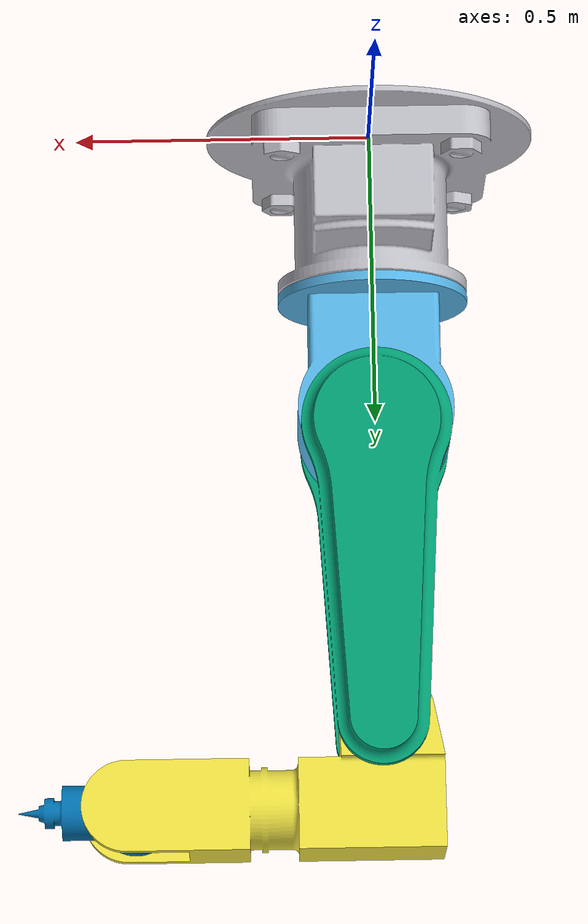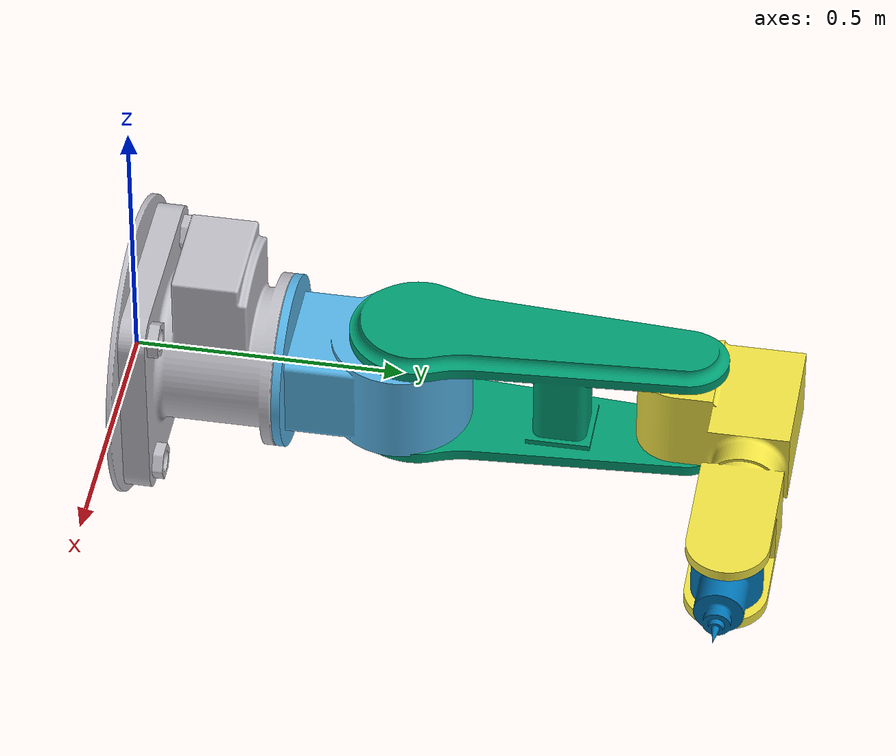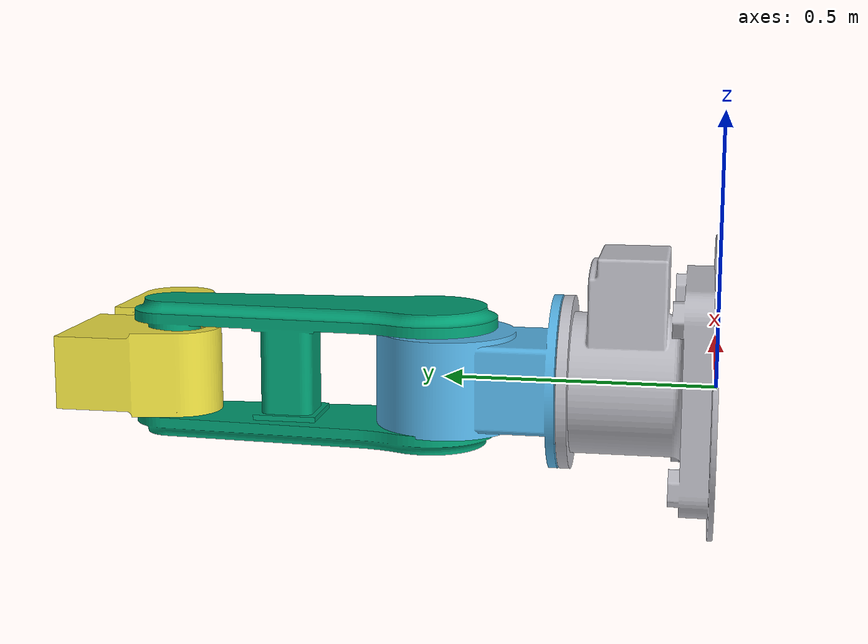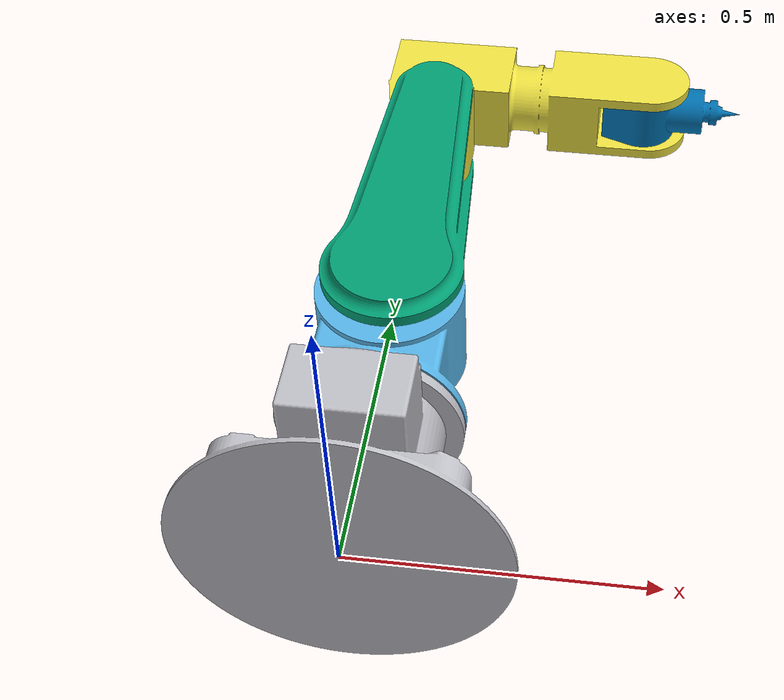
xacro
<?xml version="1.0" ?>
<robot name="robo" xmlns:xacro="http://www.ros.org/wiki/xacro">

<xacro:macro name="robo" params="prefix">

  <xacro:include filename="$(find Robo_description)/urdf/materials.xacro" />
  <xacro:include filename="$(find Robo_description)/urdf/Robo.trans" />
  <xacro:include filename="$(find Robo_description)/urdf/Robo.gazebo" />

  <!-- base link -->
  <link name="${prefix}base_link">
    <visual>
      <origin xyz="0 0 0" rpy="0 0 0"/>
      <geometry>
        <mesh filename="package://Robo_description/meshes/base_link.stl" scale="0.001 0.001 0.001"/>
      </geometry>
      <material name="robo_color2"/>
    </visual>
    <collision>
      <origin xyz="0 0 0" rpy="0 0 0"/>
      <geometry>
        <mesh filename="package://Robo_description/meshes/base_link.stl" scale="0.001 0.001 0.001"/>
      </geometry>
    </collision>
  </link>

  <!-- link1 -->
  <link name="${prefix}link1">
    <visual>
      <origin xyz="0 0 0" rpy="0 0 0"/>
      <geometry>
        <mesh filename="package://Robo_description/meshes/Link1_v1.stl" scale="0.001 0.001 0.001"/>
      </geometry>
      <material name="robo_color2"/>
    </visual>
    <collision>
      <origin xyz="0 0 0" rpy="0 0 0"/>
      <geometry>
        <mesh filename="package://Robo_description/meshes/Link1_v1.stl" scale="0.001 0.001 0.001"/>
      </geometry>
    </collision>
  </link>

  <!-- link2 -->
  <link name="${prefix}link2">
    <visual>
      <origin xyz="0 0 0" rpy="0 0 0"/>
      <geometry>
        <mesh filename="package://Robo_description/meshes/rand.stl" scale="0.001 0.001 0.001"/>
      </geometry>
      <material name="robo_color2"/>
    </visual>
    <collision>
      <origin xyz="0 0 0.1" rpy="0 0 0"/>
      <geometry>
        <mesh filename="package://Robo_description/meshes/rand.stl" scale="0.001 0.001 0.001"/>
      </geometry>
    </collision>
  </link>

  <!-- link3 -->
  <link name="${prefix}link3">
    <visual>
      <origin xyz="0 0 0" rpy="0 0 0"/>
      <geometry>
        <mesh filename="file:///home/ved/arm_ws/src/Robo_description/meshes/Link3_v1.stl" scale="0.001 0.001 0.001"/>
      </geometry>
      <material name="robo_color2"/>
    </visual>

    <collision>
      <origin xyz="0 0 0" rpy="0 0 0"/>
      <geometry>
        <mesh filename="file:///home/ved/arm_ws/src/Robo_description/meshes/Link3_v1.stl" scale="0.001 0.001 0.001"/>
      </geometry>
    </collision>
  </link>

  <!-- link4 -->
  <link name="${prefix}link4">
    <visual>
      <origin xyz="0 0 0" rpy="0 0 0"/>
      <geometry>
        <mesh filename="package://Robo_description/meshes/Link4.stl" scale="0.001 0.001 0.001"/>
      </geometry>
      <material name="robo_color2"/>
    </visual>
    <collision>
      <origin xyz="0 0 0" rpy="0 0 0"/>
      <geometry>
        <mesh filename="package://Robo_description/meshes/Link4.stl" scale="0.001 0.001 0.001"/>
      </geometry>
    </collision>
  </link>

  <!-- ========================== JOINTS =========================== -->

  <!-- Joint 1 -->
  <joint name="${prefix}joint1" type="continuous">
    <origin xyz="0 0.162 0" rpy="0 0 0"/>
    <parent link="${prefix}base_link"/>
    <child link="${prefix}link1"/>
    <axis xyz="0 1 0"/>
  </joint>

  <!-- Joint 2 -->
  <joint name="${prefix}joint2" type="revolute">
    <origin xyz="0 0.245 -0.15" rpy="0 0 0"/>
    <parent link="${prefix}link1"/>
    <child link="${prefix}link2"/>
    <axis xyz="0 0 1"/>
    <limit lower="-1.0472" upper="1.13446" effort="100" velocity="100"/>
  </joint>

  <!-- Joint 3 -->
  <joint name="${prefix}joint3" type="revolute">
    <origin xyz="-0.1 0.75 0.15" rpy="0 0 0"/>
    <parent link="${prefix}link2"/>
    <child link="${prefix}link3"/>
    <axis xyz="0 0 1"/>
    <limit upper="1.0472" lower="-2.0944" effort="100" velocity="100"/>
  </joint>

  <!-- Joint 4 -->
  <joint name="${prefix}joint4" type="revolute">
    <origin xyz="0.427443 0 0" rpy="0 0 0"/>
    <parent link="${prefix}link3"/>
    <child link="${prefix}link4"/>
    <axis xyz="0 0 1"/>
    <limit upper="1.65806" lower="-2.70526" effort="100" velocity="100"/>
  </joint>

</xacro:macro>

<xacro:robo prefix=""/>

</robot>

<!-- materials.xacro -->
<robot name="Robo" xmlns:xacro="http://www.ros.org/wiki/xacro" >

<material name="Robo_silver">
  <color rgba="0.700 0.700 0.700 1.000"/>
</material>

<material name="Robo_color0">
  <color rgba="0.729 0.357 0.024 1.0"/>
</material>

<material name="Robo_color1">
  <color rgba="0.91 0.443 0.031 1.0"/>
</material>

<material name="Robo_color2">
  <color rgba="0.502 0.0 0.0 1.0"/>
</material>

</robot>

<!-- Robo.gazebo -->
<robot name="Robo" xmlns:xacro="http://www.ros.org/wiki/xacro" >

<xacro:property name="body_color" value="Gazebo/Silver" />

<gazebo>
  <plugin name="control" filename="libgazebo_ros_control.so"/>
</gazebo>
<gazebo reference="base_link">
  <material>${body_color}</material>
  <mu1>0.2</mu1>
  <mu2>0.2</mu2>
  <self_collide>true</self_collide>
  <gravity>true</gravity>
</gazebo>

<gazebo reference="Link">
  <material>${body_color}</material>
  <mu1>0.2</mu1>
  <mu2>0.2</mu2>
  <self_collide>true</self_collide>
</gazebo>

<gazebo reference="Link">
  <material>${body_color}</material>
  <mu1>0.2</mu1>
  <mu2>0.2</mu2>
  <self_collide>true</self_collide>
</gazebo>

<gazebo reference="Link">
  <material>${body_color}</material>
  <mu1>0.2</mu1>
  <mu2>0.2</mu2>
  <self_collide>true</self_collide>
</gazebo>

<gazebo reference="Link">
  <material>${body_color}</material>
  <mu1>0.2</mu1>
  <mu2>0.2</mu2>
  <self_collide>true</self_collide>
</gazebo>

</robot>
